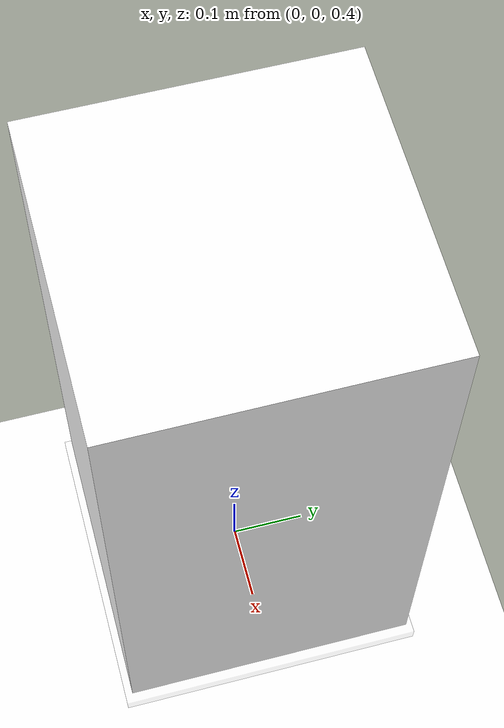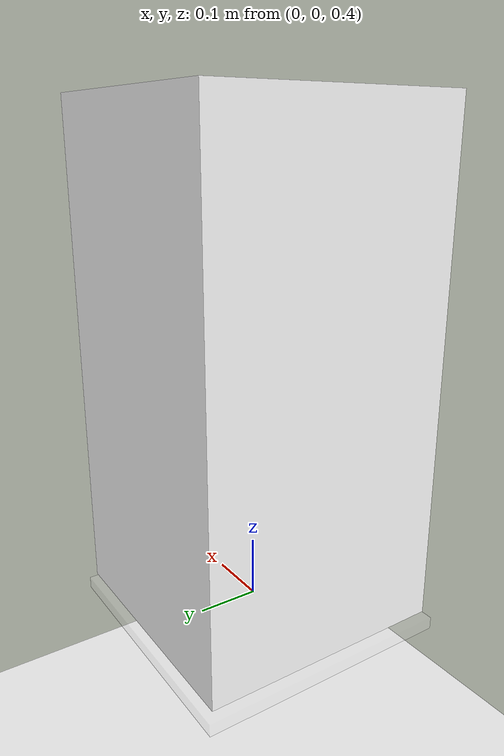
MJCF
<mujoco>
    <worldbody>

        <geom name="floor" type="box" size="2 2 0.1" rgba="1 1 5 1"/>
        <body name="caja" pos="0 0 0.8" euler="0 0 0">
            <inertial pos="0 0 0" mass="1" diaginertia="1 1 1"/>
            <geom name="caja" type="box" size="0.2 0.2 0.4" rgba="5 1 1 1"/>
            <site name="under_box" type="box" pos="0 0 -0.42" size="0.21 0.21 0.01" rgba="1 5 1 0.2"/>
            <freejoint name="q0"/>
        </body>
    </worldbody>

    <sensor>
        <force name="force" site="under_box"/>
        <touch name="touch" site="under_box"/>
    </sensor>

    <actuator>
        <adhesion name="ad" body="caja" ctrlrange="0 2" />
    </actuator>
</mujoco>
